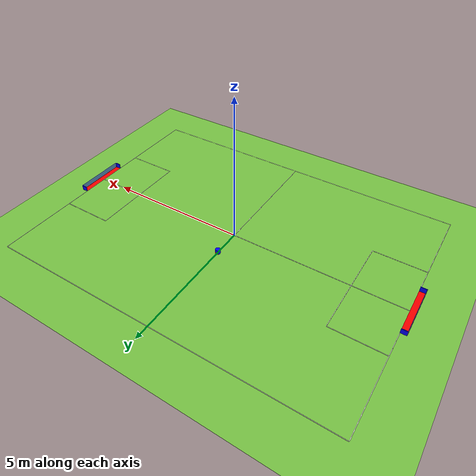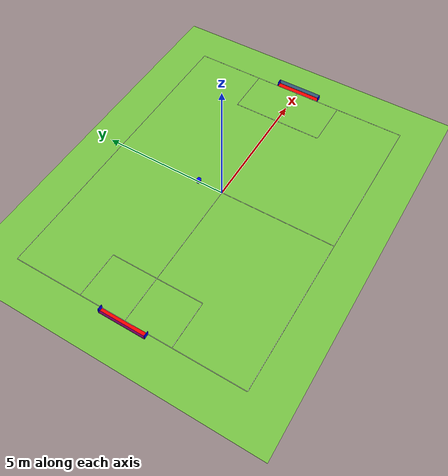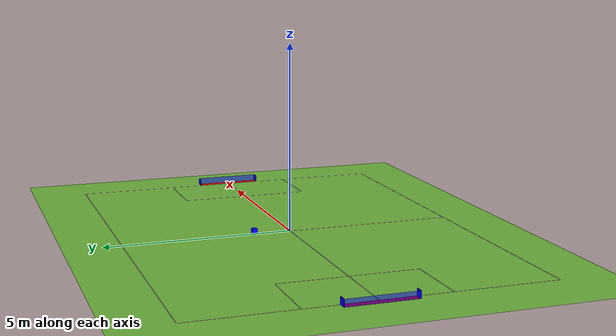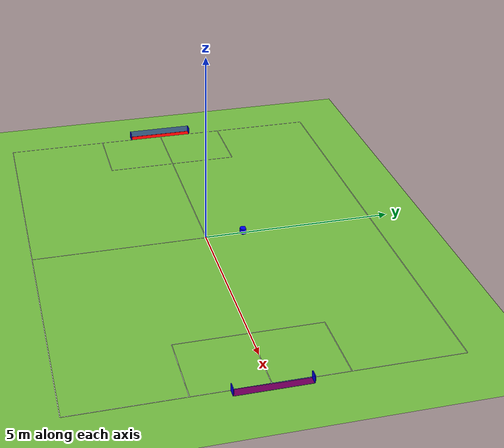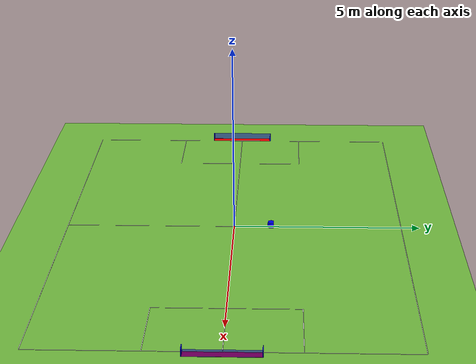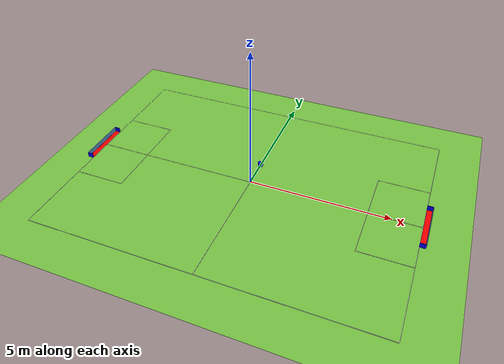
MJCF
<mujoco>
  <asset>
    <mesh name="robot_stl" file="robot_decimated.stl" scale="1 1 1"/>
  </asset>

  <worldbody>
    <!-- field plane -->
    <geom name="field" type="plane" size="7.5 6 0.01" pos="0 0 -0.01" rgba="0.48 0.78 0.27 1"/>

    <!-- Left Goal (starting at -6m) -->
    <body name="left_goal" pos="-6 0 0">
        <!-- Red goal line at exactly x=-6 -->
        <site name="left_goal_box" pos="-0.1 0 0" size="0.1 0.9 0.001" rgba="1 0 0 1" type="box"/>

        <!-- Side blockers -->
        <geom name="left_goal_side_top" type="box" size="0.1 0.01 0.09" pos="-0.1 0.9 0.09" rgba="0 0 1 1"/>
        <geom name="left_goal_side_bottom" type="box" size="0.1 0.01 0.09" pos="-0.1 -0.9 0.09" rgba="0 0 1 1"/>

        <!-- Backside -->
        <geom name="left_goal_backside" type="box" pos="-0.2 0 0.09" size="0.01 0.9 0.09" rgba="0 0 1 0.5"/>
    </body>

    <!-- Right Goal (starting at +6m) -->
    <body name="right_goal" pos="6 0 0">
        <!-- Red goal line at exactly x=6 -->
        <site name="right_goal_box" pos="0.1 0 0" size="0.1 0.9 0.001" rgba="1 0 0 1" type="box"/>

        <!-- Side blockers -->
        <geom name="right_goal_side_top" type="box" size="0.1 0.01 0.09" pos="0.1 0.9 0.09" rgba="0 0 1 1"/>
        <geom name="right_goal_side_bottom" type="box" size="0.1 0.01 0.09" pos="0.1 -0.9 0.09" rgba="0 0 1 1"/>

        <!-- Backside -->
        <geom name="right_goal_backside" type="box" pos="0.2 0 0.09" size="0.01 0.9 0.09" rgba="0 0 1 0.5"/>
    </body>

    <!-- Field boundary lines for 12×9 meter field -->
    <site name="field_line_north" pos="0 4.504 0" size="6 0.008 0.001" rgba="1 1 1 1" type="box"/>
    <site name="field_line_south" pos="0 -4.504 0" size="6 0.008 0.001" rgba="1 1 1 1" type="box"/>
    <site name="field_line_east" pos="6.008 0 0" size="0.008 4.5 0.001" rgba="1 1 1 1" type="box"/>
    <site name="field_line_west" pos="-6.008 0 0" size="0.008 4.5 0.001" rgba="1 1 1 1" type="box"/>

    <!-- Field lines middle-->
    <site name="field_line_vertical" pos="0 0 0" size="0.008 4.5 0.001" rgba="1 1 1 1" type="box"/>
    <site name="field_line_horizontal" pos="0 0 0" size="6 0.008 0.001" rgba="1 1 1 1" type="box"/>

    <!-- Left goal box (1.8m wide × 3.6m tall) -->
    <site name="left_goal_box_top" pos="-5.1 1.8 0.0005" size="0.9 0.008 0.001" rgba="1 1 1 1" type="box"/>
    <site name="left_goal_box_bottom" pos="-5.1 -1.8 0.0005" size="0.9 0.008 0.001" rgba="1 1 1 1" type="box"/>
    <site name="left_goal_box_front" pos="-4.2 0 0.0005" size="0.008 1.8 0.001" rgba="1 1 1 1" type="box"/>

    <!-- Right goal box (1.8m wide × 3.6m tall) -->
    <site name="right_goal_box_top" pos="5.1 1.8 0.0005" size="0.9 0.008 0.001" rgba="1 1 1 1" type="box"/>
    <site name="right_goal_box_bottom" pos="5.1 -1.8 0.0005" size="0.9 0.008 0.001" rgba="1 1 1 1" type="box"/>
    <site name="right_goal_box_front" pos="4.2 0 0.0005" size="0.008 1.8 0.001" rgba="1 1 1 1" type="box"/>

    <!-- Body for main robot -->
    <body name="robot_planar" pos="0 1 0">
        <!-- Planar joint using a combination of slide joints -->
        <joint name="x_slide" type="slide" axis="1 0 0" pos="0 0 0" damping="0.8" armature="0.6"/>
        <joint name="y_slide" type="slide" axis="0 1 0" pos="0 0 0" damping="0.8" armature="0.6"/>
        <joint name="z_rotate" type="hinge" axis="0 0 1" pos="0 0 0" damping="0" armature="0.5"/>

        <!-- The actual robot geometry -->
        <geom name="robot_mesh" type="mesh" mesh="robot_stl" rgba="0 0 1 1" mass="5"/>

        <!-- Front-mounted kicker -->
        <body name="kicker_body" pos="0 0.065 0.02">
            <!-- Kicker joint -->
            <joint name="kicker_extend" type="slide" axis="0 1 0" limited="true" range="0 0.1"
                  damping="0" stiffness="0" armature="0"/>

            <!-- Kicker plate geometry -->
            <geom name="kicker_plate_geom" type="box" size="0.055 0.004 0.025" rgba="1 0.5 0 1"
                  mass="0.5" friction="1.8 0.005 0.05" solref="0.01 1" solimp="0.95 0.98 0.001"/>
        </body>
    </body>

    <!-- Golf ball -->
    <body name="golf_ball" pos="1 0 0">
        <joint name= "ball_joint" type="free"/>
        <geom name="golf_ball_geom" type="sphere" size="0.0215" rgba="1 0 0 1" mass="0.046" friction="2.408 0.01 0.0035" condim="6"/> <!-- 0.0035 is set experimentally, sliding friction is rolling friction * 0.985 (from Tigers) -->
                                                                                                                                      <!-- However to model the friction of dribbler, make it times 8.-->
    </body>

  </worldbody>

    <actuator>
        <velocity name="x_vel" joint="x_slide" kv="22" ctrlrange="-3 3"/>
        <velocity name="y_vel" joint="y_slide" kv="22" ctrlrange="-3 3"/>
        <velocity name="rot_vel" joint="z_rotate" kv="5"/>

        <motor name="ball_x" joint="ball_joint" gear="0.5 0 0 0 0 0" />
        <motor name="ball_y" joint="ball_joint" gear="0 0.5 0 0 0 0" />
        <position name="kicker_pos" joint="kicker_extend" kp="800" kv="20" ctrlrange="0 1" ctrllimited="true"/>
  </actuator>

  <contact>
    <pair geom1="robot_mesh" geom2="golf_ball_geom"/>
    <pair geom1="kicker_plate_geom" geom2="golf_ball_geom"/>
    <exclude body1="robot_planar" body2="kicker_body"/>
</contact>

</mujoco>
